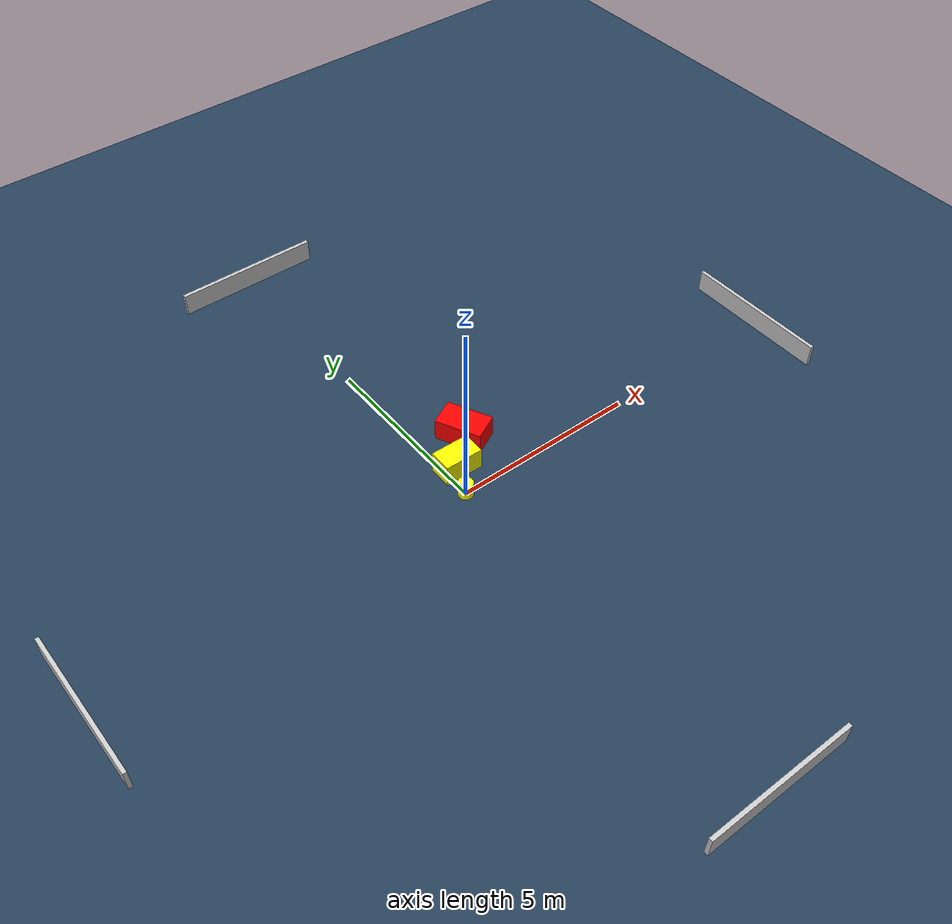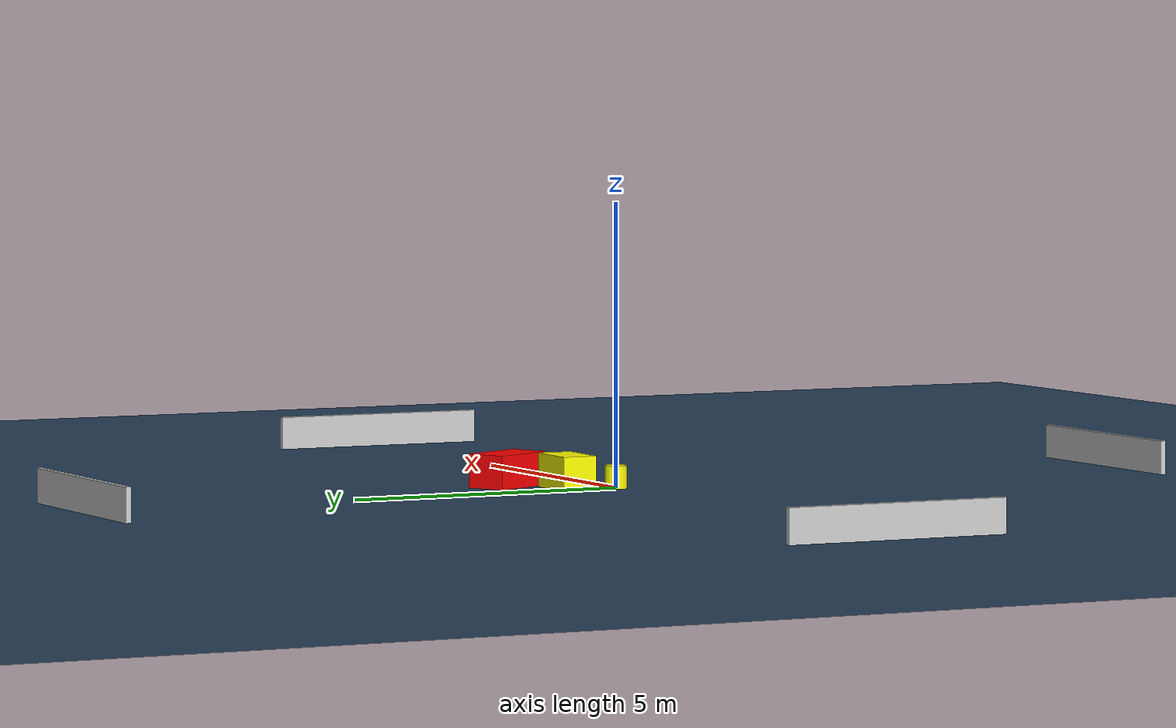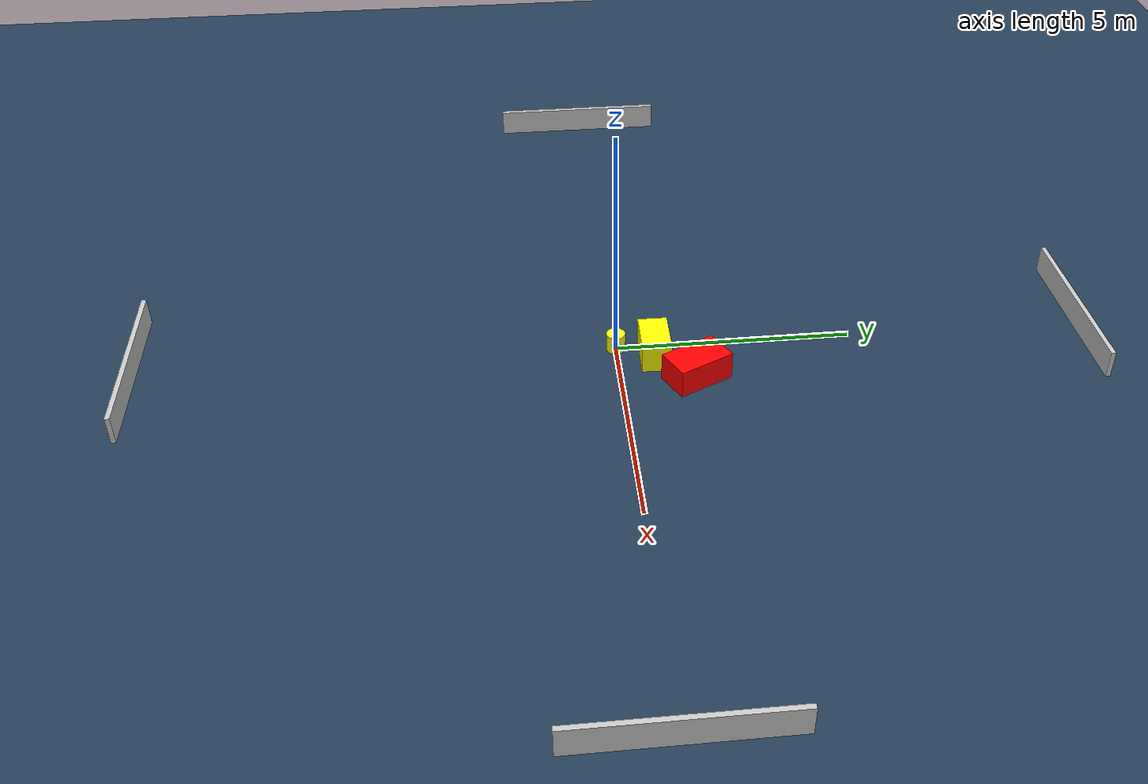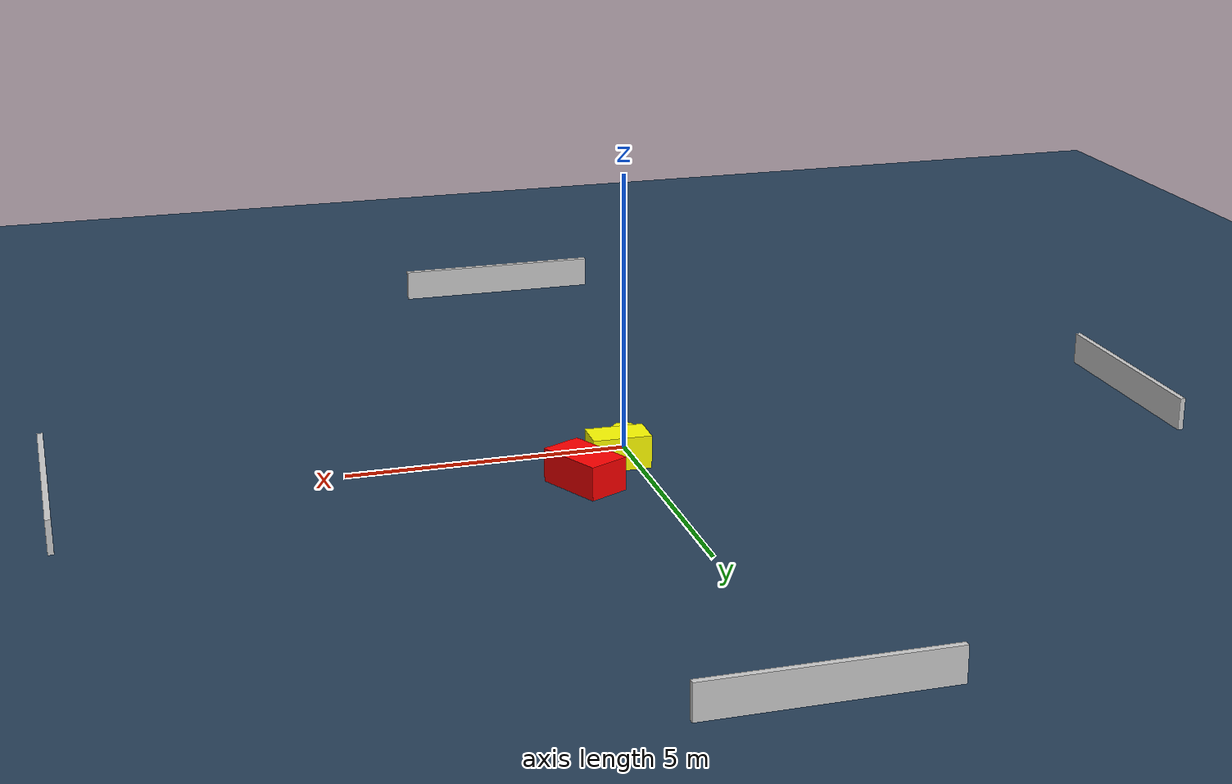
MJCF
<?xml version="1.0" ?>
<mujoco model="generated_environment">
  <option timestep="0.01" integrator="RK4" cone="elliptic"/>
  <default>
    <geom density="1"/>
  </default>
  <asset>
    <texture builtin="gradient" height="3072" name="skybox" rgb1="0.3 0.5 0.7" rgb2="0 0 0" type="skybox" width="512"/>
    <texture builtin="checker" height="300" name="groundplane" rgb1="0.2 0.3 0.4" rgb2="0.1 0.2 0.3" type="2d" width="300"/>
    <material name="groundplane" reflectance="0.2" texrepeat="5 5" texture="groundplane"/>
  </asset>
  <worldbody>
    <light dir="0 0 -1" directional="true" pos="0 0 1.5"/>
    <geom condim="3" friction="0.5 0.005 0.001" material="groundplane" name="floor" pos="0 0 0" size="0 0 0.05" type="plane"/>
    <body name="walls">
      <geom name="wall_1" condim="4" pos="-10.0 0.0 0.3" rgba="0.800000011920929 0.800000011920929 0.800000011920929 1.0" size="0.05 2.0 0.3" type="box"/>
      <geom name="wall_2" condim="4" pos="10.0 0.0 0.3" rgba="0.800000011920929 0.800000011920929 0.800000011920929 1.0" size="0.05 2.0 0.3" type="box"/>
      <geom name="wall_3" condim="4" pos="0.0 -10.0 0.3" rgba="0.800000011920929 0.800000011920929 0.800000011920929 1.0" size="2.0 0.05 0.3" type="box"/>
      <geom name="wall_4" condim="4" pos="0.0 10.0 0.3" rgba="0.800000011920929 0.800000011920929 0.800000011920929 1.0" size="2.0 0.05 0.3" type="box"/>
    </body>
    <body name="robot">
      <joint name="joint_x" type="slide" pos="0 0 0" axis="1 0 0"/>
      <joint name="joint_y" type="slide" pos="0 0 0" axis="0 1 0"/>
      <geom name="robot" type="cylinder" pos="0.0 0.0 0.2" size="0.2 0.2 0.0" mass="5.0" friction="1.0 0.005 0.0001" condim="4" rgba="1.0 1.0 0.0 1.0"/>
    </body>
    <body name="obstacle_1_movable">
      <geom name="obstacle_1_movable" condim="4" pos="0.33487654214488694 0.7807308701759773 0.3" euler="0 0 88.94637618650647" friction="0.0 0.005 0.001" rgba="1.0 1.0 0.0 1.0" size="0.3094386869488717 0.5220421755761175 0.3" type="box" mass="0.1"/>
      <joint type="free"/>
    </body>
    <body name="obstacle_2_static">
      <geom name="obstacle_2_static" condim="4" pos="1.150200106715265 1.5513682352270826 0.3" euler="0 0 116.37816777238693" friction="0.0 0.005 0.001" rgba="1.0 0.0 0.0 1.0" size="0.620233291460028 0.37452595636513086 0.3" type="box"/>
    </body>
  </worldbody>
  <actuator>
    <motor name="actuator_x" joint="joint_x" gear="1" ctrlrange="-1 1"/>
    <motor name="actuator_y" joint="joint_y" gear="1" ctrlrange="-1 1"/>
  </actuator>
</mujoco>
